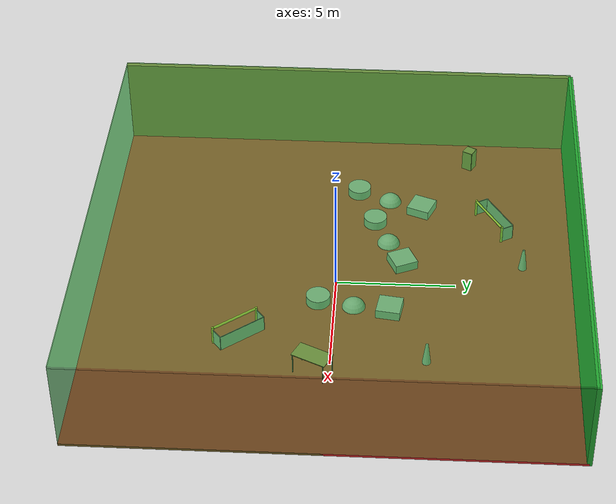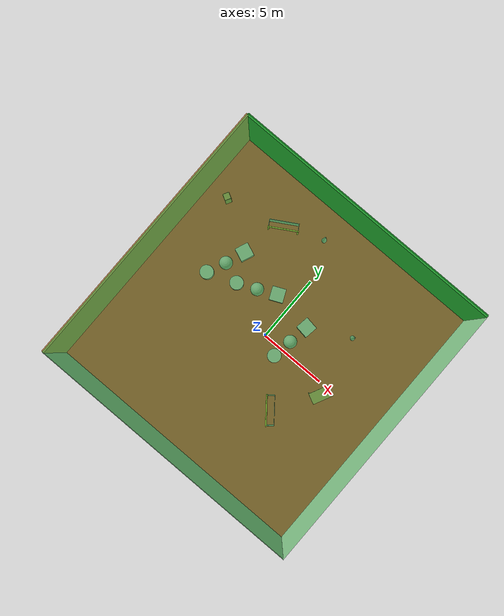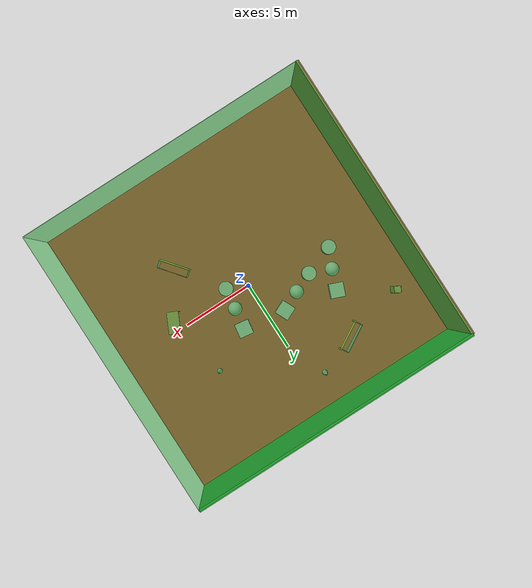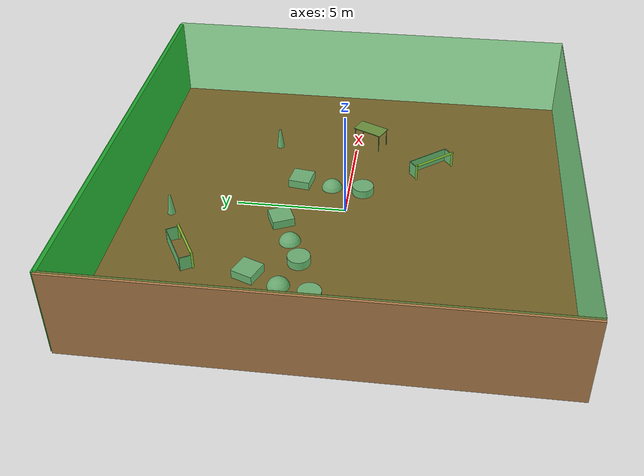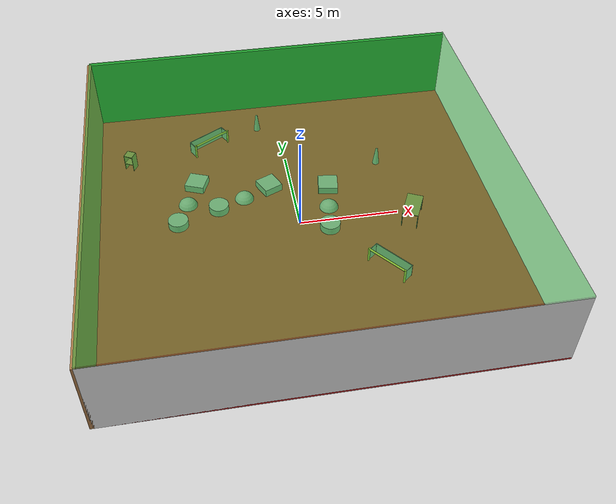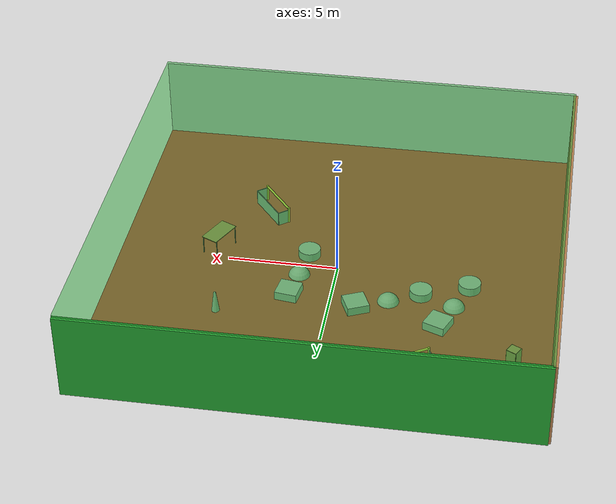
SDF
<sdf version="1.4">
 <world name="default">
  <physics type="ode">
   <max_step_size>0.001</max_step_size>
   <real_time_factor>1</real_time_factor>
   <real_time_update_rate>1000</real_time_update_rate>
   <gravity>0 0 -9.8</gravity>
  </physics>
  <scene><ambient>0.4 0.4 0.4 1</ambient><background>0.7 0.7 0.7 1</background><shadows>1</shadows></scene>
  <model name="Surrounding">
   <static>1</static>
   <link name="Ceiling">
    <collision name="Ceiling_Collision"><geometry><box><size>20 20 0.1</size></box></geometry></collision>
    <visual name="Ceiling_Visual">
     <geometry><box><size>20 20 0.1</size></box></geometry>
     <material>
      <script><uri>file://media/materials/scripts/gazebo.material</uri><name>Gazebo/GreenTransparent</name></script>
     </material>
    </visual>
    <pose>0 0 4.05 0 0 0</pose>
   </link>
   <link name="Wall_South">
    <collision name="Wall_South_Collision">
     <geometry><box><size>20 0 4</size></box></geometry>
     <pose>0 0 2 0 -0 0</pose>
    </collision>
    <visual name="Wall_South_Visual">
     <pose>0 0 2 0 -0 0</pose>
     <geometry><box><size>20 0 4</size></box></geometry>
     <material>
      <script><uri>file://media/materials/scripts/gazebo.material</uri><name>Gazebo/White</name></script>
     </material>
    </visual>
    <velocity_decay><linear>0</linear><angular>0</angular></velocity_decay>
    <pose>0 -10 0 0 -0 0</pose>
   </link>
   <link name="Wall_East">
    <collision name="Wall_21_Collision">
     <geometry><box><size>20 0 4</size></box></geometry>
     <pose>0 0 2 0 -0 0</pose>
    </collision>
    <visual name="Wall_21_Visual">
     <pose>0 0 2 0 -0 0</pose>
     <geometry><box><size>20 0 4</size></box></geometry>
     <material>
      <script><uri>file://media/materials/scripts/gazebo.material</uri><name>Gazebo/GreenTransparent</name></script>
     </material>
    </visual>
    <velocity_decay><linear>0</linear><angular>0</angular></velocity_decay>
    <pose>10 0 0 0 -0 1.5708</pose>
   </link>
   <link name="Wall_North">
    <collision name="Wall_22_Collision">
     <geometry><box><size>20 0.2 4</size></box></geometry>
     <pose>0 0 2 0 -0 0</pose>
    </collision>
    <visual name="Wall_22_Visual">
     <pose>0 0 2 0 -0 0</pose>
     <geometry><box><size>20 0.2 4</size></box></geometry>
     <material>
      <script><uri>file://media/materials/scripts/gazebo.material</uri><name>Gazebo/GreenGlow</name></script>
     </material>
    </visual>
    <velocity_decay><linear>0</linear><angular>0</angular></velocity_decay>
    <pose>0 10 0 0 -0 0</pose>
   </link>
   <link name="Wall_West">
    <collision name="Wall_23_Collision">
     <geometry><box><size>20 0.2 4</size></box></geometry>
     <pose>0 0 2 0 -0 0</pose>
    </collision>
    <visual name="Wall_23_Visual">
     <pose>0 0 2 0 -0 0</pose>
     <geometry><box><size>20 0.2 4</size></box></geometry>
     <material>
      <script><uri>file://media/materials/scripts/gazebo.material</uri><name>Gazebo/WoodPallet</name></script>
     </material>
    </visual>
    <velocity_decay><linear>0</linear><angular>0</angular></velocity_decay>
    <pose>-10 0 0 0 0 -1.5708</pose>
   </link>
   <link name="Ground_link">
    <collision name="collision">
     <pose>0 0 .05 0 -0 0</pose>
     <geometry><box><size>20 20 0.1</size></box></geometry>
    </collision>
    <visual name="visual">
     <pose>0 0 .05 0 -0 0</pose>
     <geometry><box><size>20 20 0.1</size></box></geometry>
     <material>
      <script><uri>file://media/materials/scripts/gazebo.material</uri><name>Gazebo/RedBright</name></script>
     </material>
    </visual>
   </link>
   <static>1</static>
  </model>
  <spherical_coordinates>
   <surface_model>EARTH_WGS84</surface_model>
   <latitude_deg>0</latitude_deg>
   <longitude_deg>0</longitude_deg>
   <elevation>0</elevation>
   <heading_deg>0</heading_deg>
  </spherical_coordinates>
  <light name="lightball_0" type="diffuse">
   <diffuse>0.8 0.8 0.8 1</diffuse>
   <specular>0.2 0.2 0.2 1</specular>
   <attenuation>
    <range>100</range>
    <constant>0.7</constant>
    <linear>0.01</linear>
    <quadratic>0.001</quadratic>
   </attenuation>
   <direction>-0.5 0.1 -0.9</direction>
   <pose>9.92731163155 -2.49468493765 2.41599706494 0 0 0</pose>
  </light>
  <light name="lightball_1" type="diffuse">
   <diffuse>0.8 0.8 0.8 1</diffuse>
   <specular>0.2 0.2 0.2 1</specular>
   <attenuation>
    <range>100</range>
    <constant>0.7</constant>
    <linear>0.01</linear>
    <quadratic>0.001</quadratic>
   </attenuation>
   <direction>-0.5 0.1 -0.9</direction>
   <pose>-6.20614828903 -5.5952090808 1.70092945711 0 0 0</pose>
  </light>
  <light name="lightball_2" type="diffuse">
   <diffuse>0.8 0.8 0.8 1</diffuse>
   <specular>0.2 0.2 0.2 1</specular>
   <attenuation>
    <range>100</range>
    <constant>0.7</constant>
    <linear>0.01</linear>
    <quadratic>0.001</quadratic>
   </attenuation>
   <direction>-0.5 0.1 -0.9</direction>
   <pose>1.87071975056 -1.1878525451 0.842107071169 0 0 0</pose>
  </light>
  <light name="lightball_3" type="diffuse">
   <diffuse>0.8 0.8 0.8 1</diffuse>
   <specular>0.2 0.2 0.2 1</specular>
   <attenuation>
    <range>100</range>
    <constant>0.7</constant>
    <linear>0.01</linear>
    <quadratic>0.001</quadratic>
   </attenuation>
   <direction>-0.5 0.1 -0.9</direction>
   <pose>-3.99024987874 -2.16808516211 3.74578496596 0 0 0</pose>
  </light>
  <light name="lightball_4" type="diffuse">
   <diffuse>0.8 0.8 0.8 1</diffuse>
   <specular>0.2 0.2 0.2 1</specular>
   <attenuation>
    <range>100</range>
    <constant>0.7</constant>
    <linear>0.01</linear>
    <quadratic>0.001</quadratic>
   </attenuation>
   <direction>-0.5 0.1 -0.9</direction>
   <pose>2.7401244284 -3.62508059249 1.26062682652 0 0 0</pose>
  </light>
  <light name="lightball_5" type="diffuse">
   <diffuse>0.8 0.8 0.8 1</diffuse>
   <specular>0.2 0.2 0.2 1</specular>
   <attenuation>
    <range>100</range>
    <constant>0.7</constant>
    <linear>0.01</linear>
    <quadratic>0.001</quadratic>
   </attenuation>
   <direction>-0.5 0.1 -0.9</direction>
   <pose>3.68933492705 -3.03804346154 3.60358611797 0 0 0</pose>
  </light>
  <light name="lightball_6" type="diffuse">
   <diffuse>0.8 0.8 0.8 1</diffuse>
   <specular>0.2 0.2 0.2 1</specular>
   <attenuation>
    <range>100</range>
    <constant>0.7</constant>
    <linear>0.01</linear>
    <quadratic>0.001</quadratic>
   </attenuation>
   <direction>-0.5 0.1 -0.9</direction>
   <pose>8.40308765418 9.34074414617 2.1988789342 0 0 0</pose>
  </light>
  <light name="lightball_7" type="diffuse">
   <diffuse>0.8 0.8 0.8 1</diffuse>
   <specular>0.2 0.2 0.2 1</specular>
   <attenuation>
    <range>100</range>
    <constant>0.7</constant>
    <linear>0.01</linear>
    <quadratic>0.001</quadratic>
   </attenuation>
   <direction>-0.5 0.1 -0.9</direction>
   <pose>2.52006262532 9.34633412756 2.30092478247 0 0 0</pose>
  </light>
  <light name="lightball_8" type="diffuse">
   <diffuse>0.8 0.8 0.8 1</diffuse>
   <specular>0.2 0.2 0.2 1</specular>
   <attenuation>
    <range>100</range>
    <constant>0.7</constant>
    <linear>0.01</linear>
    <quadratic>0.001</quadratic>
   </attenuation>
   <direction>-0.5 0.1 -0.9</direction>
   <pose>-4.99479733945 -0.553553961341 2.48838900931 0 0 0</pose>
  </light>
  <light name="lightball_9" type="diffuse">
   <diffuse>0.8 0.8 0.8 1</diffuse>
   <specular>0.2 0.2 0.2 1</specular>
   <attenuation>
    <range>100</range>
    <constant>0.7</constant>
    <linear>0.01</linear>
    <quadratic>0.001</quadratic>
   </attenuation>
   <direction>-0.5 0.1 -0.9</direction>
   <pose>3.15890836844 3.42741636397 2.85426239506 0 0 0</pose>
  </light>
  <include><uri>model://cabinet</uri><pose>-8.28988491629 5.61588322302 0 0 0 1.08116901694</pose></include>
  <include>
   <uri>model://textured_shapes</uri>
   <pose>-5.47389765123 2.12404297906 0 0 0 2.76101006922</pose>
  </include>
  <include>
   <uri>model://robocup_3Dsim_goal</uri>
   <pose>-3.85645907572 6.44111599889 0 0 0 2.10442933448</pose>
  </include>
  <include>
   <uri>model://textured_shapes</uri>
   <pose>-2.57518333954 2.13200558907 0 0 0 1.99710340176</pose>
  </include>
  <include>
   <uri>model://construction_cone</uri>
   <pose>-1.20066395614 7.83995165567 0 0 0 3.10530525715</pose>
  </include>
  <include>
   <uri>model://textured_shapes</uri>
   <pose>1.61401338888 0.813978169227 0 0 0 2.9930318489</pose>
  </include>
  <include>
   <uri>model://robocup_3Dsim_goal</uri>
   <pose>3.4272444847 -3.9187895502 0 0 0 0.674080468428</pose>
  </include>
  <include><uri>model://table</uri><pose>5.56298059984 -0.639961097171 0 0 0 1.12142049996</pose></include>
  <include>
   <uri>model://construction_cone</uri>
   <pose>4.80370991069 3.85175146208 0 0 0 1.46497817325</pose>
  </include>
 </world>
</sdf>

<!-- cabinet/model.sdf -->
<sdf version="1.5">
  <model name="cabinet">
    <static>true</static>
    <link name="cabinet_bottom_plate">
      <inertial>
        <pose>0 0 -1 0 0 0</pose>
        <inertia>
          <ixx>2.050000</ixx>
          <ixy>0</ixy>
          <ixz>0</ixz>
          <iyy>2.050000</iyy>
          <iyz>0</iyz>
          <izz>2.050000</izz>
        </inertia>
        <mass>25.000000</mass>
      </inertial>
      <collision name="cabinet_bottom_plate_geom">
        <pose>0 0 0.010000 0 0 0</pose>
        <geometry>
          <box>
            <size>0.450000 0.450000 0.020000</size>
          </box>
        </geometry>
      </collision>
      <visual name="cabinet_bottom_plate_geom_visual">
        <pose>0 0 0.010000 0 0 0</pose>
        <geometry>
          <box>
            <size>0.450000 0.450000 0.020000</size>
          </box>
        </geometry>
        <material>
          <script>
            <uri>model://media/materials/scripts/gazebo.material</uri>
            <name>Gazebo/Wood</name>
          </script>
        </material>
      </visual>
      <collision name="cabinet_bottom_plate_geom_cabinet_back_plate">
        <pose>0.235000 0 0.510000 0 0 0</pose>
        <geometry>
          <box>
            <size>0.020000 0.450000 1.020000</size>
          </box>
        </geometry>
      </collision>
      <visual name="cabinet_bottom_plate_geom_cabinet_back_plate_visual">
        <pose>0.235000 0 0.510000 0 0 0</pose>
        <geometry>
          <box>
            <size>0.020000 0.450000 1.020000</size>
          </box>
        </geometry>
        <material>
          <script>
            <uri>model://media/materials/scripts/gazebo.material</uri>
            <name>Gazebo/Wood</name>
          </script>
        </material>
      </visual>
      <collision name="cabinet_bottom_plate_geom_cabinet_left_plate">
        <pose>0 0.235000 0.510000 0 0 0</pose>
        <geometry>
          <box>
            <size>0.450000 0.020000 1.020000</size>
          </box>
        </geometry>
      </collision>
      <visual name="cabinet_bottom_plate_geom_cabinet_left_plate_visual">
        <pose>0 0.235000 0.510000 0 0 0</pose>
        <geometry>
          <box>
            <size>0.450000 0.020000 1.020000</size>
          </box>
        </geometry>
        <material>
          <script>
            <uri>model://media/materials/scripts/gazebo.material</uri>
            <name>Gazebo/Wood</name>
          </script>
        </material>
      </visual>
      <collision name="cabinet_bottom_plate_geom_cabinet_middle_plate">
        <pose>0 0 0.510000 0 0 0</pose>
        <geometry>
          <box>
            <size>0.450000 0.450000 0.020000</size>
          </box>
        </geometry>
      </collision>
      <visual name="cabinet_bottom_plate_geom_cabinet_middle_plate_visual">
        <pose>0 0 0.510000 0 0 0</pose>
        <geometry>
          <box>
            <size>0.450000 0.450000 0.020000</size>
          </box>
        </geometry>
        <material>
          <script>
            <uri>model://media/materials/scripts/gazebo.material</uri>
            <name>Gazebo/Wood</name>
          </script>
        </material>
      </visual>
      <collision name="cabinet_bottom_plate_geom_cabinet_right_plate">
        <pose>0 -0.235000 0.510000 0 0 0</pose>
        <geometry>
          <box>
            <size>0.450000 0.020000 1.020000</size>
          </box>
        </geometry>
      </collision>
      <visual name="cabinet_bottom_plate_geom_cabinet_right_plate_visual">
        <pose>0 -0.235000 0.510000 0 0 0</pose>
        <geometry>
          <box>
            <size>0.450000 0.020000 1.020000</size>
          </box>
        </geometry>
        <material>
          <script>
            <uri>model://media/materials/scripts/gazebo.material</uri>
            <name>Gazebo/Wood</name>
          </script>
        </material>
      </visual>
      <collision name="cabinet_bottom_plate_geom_cabinet_top_plate">
        <pose>0 0 1.010000 0 0 0</pose>
        <geometry>
          <box>
            <size>0.450000 0.450000 0.020000</size>
          </box>
        </geometry>
      </collision>
      <visual name="cabinet_bottom_plate_geom_cabinet_top_plate_visual">
        <pose>0 0 1.010000 0 0 0</pose>
        <geometry>
          <box>
            <size>0.450000 0.450000 0.020000</size>
          </box>
        </geometry>
        <material>
          <script>
            <uri>model://media/materials/scripts/gazebo.material</uri>
            <name>Gazebo/Wood</name>
          </script>
        </material>
      </visual>
    </link>
  </model>
</sdf>

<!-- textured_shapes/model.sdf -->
<sdf version="1.6">
  <model name="textured_shapes">
    <pose>0 0 0.5 0 0 0</pose>
    <link name="box">
      <pose>0 -1.5 0 0 0 0</pose>
      <collision name="collision">
        <geometry>
          <box>
            <size>1 1 1</size>
          </box>
        </geometry>
      </collision>
      <visual name="visual">
        <geometry>
          <box>
            <size>1 1 1</size>
          </box>
        </geometry>
        <material>
          <script>
            <uri>model://../model_source/models/textured_shapes/materials/scripts</uri>
            <uri>model://../model_source/models/textured_shapes/materials/textures</uri>
            <name>TexturedShape/Squares</name>
          </script>
        </material>
      </visual>
    </link>
    <link name="sphere">
      <collision name="collision">
        <geometry>
          <sphere>
            <radius>0.5</radius>
          </sphere>
        </geometry>
      </collision>
      <visual name="visual">
        <geometry>
          <sphere>
            <radius>0.5</radius>
          </sphere>
        </geometry>
        <material>
          <script>
            <uri>model://../model_source/models/textured_shapes/materials/scripts</uri>
            <uri>model://../model_source/models/textured_shapes/materials/textures</uri>
            <name>TexturedShape/Squares</name>
          </script>
        </material>
      </visual>
    </link>
    <link name="cylinder">
      <pose>0 1.5 0 0 0 0</pose>
      <collision name="collision">
        <geometry>
          <cylinder>
            <radius>0.5</radius>
            <length>1</length>
          </cylinder>
        </geometry>
      </collision>
      <visual name="visual">
        <geometry>
          <cylinder>
            <radius>0.5</radius>
            <length>1</length>
          </cylinder>
        </geometry>
        <material>
          <script>
            <uri>model://../model_source/models/textured_shapes/materials/scripts</uri>
            <uri>model://../model_source/models/textured_shapes/materials/textures</uri>
            <name>TexturedShape/Squares</name>
          </script>
        </material>
      </visual>
    </link>
  </model>
</sdf>

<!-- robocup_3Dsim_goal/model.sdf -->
<sdf version="1.5">
  <model name="robocup_3d_goal">
    <static>true</static>
    <link name="left_post">
      <pose>0 1.05 0.45 0 0 0</pose>
      <collision name="collision">
        <geometry>
          <cylinder>
            <radius>0.05</radius>
            <length>0.9</length>
          </cylinder>
        </geometry>
      </collision>
      <visual name="visual">
        <geometry>
          <cylinder>
            <radius>0.05</radius>
            <length>0.9</length>
          </cylinder>
        </geometry>
        <material>
          <script>
            <uri>file://media/materials/scripts/gazebo.material</uri>
            <name>Gazebo/ZincYellow</name>
          </script>
        </material>
      </visual>
    </link>
    <link name="left_support_horiz_lower">
      <pose>0.30 1.05 0.01 0 0 0</pose>
      <collision name="collision">
        <geometry>
          <box>
            <size>0.50 0.02 0.02</size>
          </box>
        </geometry>
      </collision>
      <visual name="visual">
        <geometry>
          <box>
            <size>0.50 0.02 0.02</size>
          </box>
        </geometry>
        <material>
          <script>
            <uri>file://media/materials/scripts/gazebo.material</uri>
            <name>Gazebo/White</name>
          </script>
        </material>
      </visual>
    </link>
    <link name="left_support_horiz_upper">
      <pose>0.30 1.05 0.79 0 0 0</pose>
      <collision name="collision">
        <geometry>
          <box>
            <size>0.50 0.02 0.02</size>
          </box>
        </geometry>
      </collision>
      <visual name="visual">
        <geometry>
          <box>
            <size>0.50 0.02 0.02</size>
          </box>
        </geometry>
        <material>
          <script>
            <uri>file://media/materials/scripts/gazebo.material</uri>
            <name>Gazebo/White</name>
          </script>
        </material>
      </visual>
    </link>
    <link name="left_support_vertical">
      <pose>0.56 1.05 0.4 0 1.5708 0</pose>
      <collision name="collision">
        <geometry>
          <box>
            <size>0.80 0.02 0.02</size>
          </box>
        </geometry>
      </collision>
      <visual name="visual">
        <geometry>
          <box>
            <size>0.80 0.02 0.02</size>
          </box>
        </geometry>
        <material>
          <script>
            <uri>file://media/materials/scripts/gazebo.material</uri>
            <name>Gazebo/White</name>
          </script>
        </material>
      </visual>
    </link>
    <link name="right_support_horiz_lower">
      <pose>0.30 -1.05 0.01 0 0 0</pose>
      <collision name="collision">
        <geometry>
          <box>
            <size>0.50 0.02 0.02</size>
          </box>
        </geometry>
      </collision>
      <visual name="visual">
        <geometry>
          <box>
            <size>0.50 0.02 0.02</size>
          </box>
        </geometry>
        <material>
          <script>
            <uri>file://media/materials/scripts/gazebo.material</uri>
            <name>Gazebo/White</name>
          </script>
        </material>
      </visual>
    </link>
    <link name="right_support_horiz_upper">
      <pose>0.30 -1.05 0.79 0 0 0</pose>
      <collision name="collision">
        <geometry>
          <box>
            <size>0.50 0.02 0.02</size>
          </box>
        </geometry>
      </collision>
      <visual name="visual">
        <geometry>
          <box>
            <size>0.50 0.02 0.02</size>
          </box>
        </geometry>
        <material>
          <script>
            <uri>file://media/materials/scripts/gazebo.material</uri>
            <name>Gazebo/White</name>
          </script>
        </material>
      </visual>
    </link>
    <link name="right_support_vertical">
      <pose>0.56 -1.05 0.4 0 1.5708 0</pose>
      <collision name="collision">
        <geometry>
          <box>
            <size>0.80 0.02 0.02</size>
          </box>
        </geometry>
      </collision>
      <visual name="visual">
        <geometry>
          <box>
            <size>0.80 0.02 0.02</size>
          </box>
        </geometry>
        <material>
          <script>
            <uri>file://media/materials/scripts/gazebo.material</uri>
            <name>Gazebo/White</name>
          </script>
        </material>
      </visual>
    </link>
    <link name="center_support_horiz_lower">
      <pose>0.56 0 0.01 0 1.5708 0</pose>
      <collision name="collision">
        <geometry>
          <box>
            <size>0.02 2.08 0.02</size>
          </box>
        </geometry>
      </collision>
      <visual name="visual">
        <geometry>
          <box>
            <size>0.02 2.08 0.02</size>
          </box>
        </geometry>
        <material>
          <script>
            <uri>file://media/materials/scripts/gazebo.material</uri>
            <name>Gazebo/White</name>
          </script>
        </material>
      </visual>
    </link>
    <link name="center_support_horiz_upper">
      <pose>0.56 0 0.79 0 1.5708 0</pose>
      <collision name="collision">
        <geometry>
          <box>
            <size>0.02 2.08 0.02</size>
          </box>
        </geometry>
      </collision>
      <visual name="visual">
        <geometry>
          <box>
            <size>0.02 2.08 0.02</size>
          </box>
        </geometry>
        <material>
          <script>
            <uri>file://media/materials/scripts/gazebo.material</uri>
            <name>Gazebo/White</name>
          </script>
        </material>
      </visual>
    </link>
    <link name="right_post">
      <pose>0 -1.05 0.45 0 0 0</pose>
      <collision name="collision">
        <geometry>
          <cylinder>
            <radius>0.05</radius>
            <length>0.9</length>
          </cylinder>
        </geometry>
      </collision>
      <visual name="visual">
        <geometry>
          <cylinder>
            <radius>0.05</radius>
            <length>0.9</length>
          </cylinder>
        </geometry>
        <material>
          <script>
            <uri>file://media/materials/scripts/gazebo.material</uri>
            <name>Gazebo/ZincYellow</name>
          </script>
        </material>
      </visual>
    </link>
    <link name="crossbar">
      <pose>0 0 0.85 1.57 1.57 0</pose>
      <collision name="collision">
        <geometry>
          <cylinder>
            <radius>0.05</radius>
            <length>2.0</length>
          </cylinder>
        </geometry>
      </collision>
      <visual name="visual">
        <geometry>
          <cylinder>
            <radius>0.05</radius>
            <length>2.0</length>
          </cylinder>
        </geometry>
        <material>
          <script>
            <uri>file://media/materials/scripts/gazebo.material</uri>
            <name>Gazebo/ZincYellow</name>
          </script>
        </material>
      </visual>
    </link>
    <link name="center_net">
      <pose>0.56 0 0.40 0 0 0</pose>
      <collision name="collision">
        <geometry>
          <box>
            <size>0.01 2.1 0.80</size>
          </box>
        </geometry>
      </collision>
      <visual name="visual">
        <geometry>
          <box>
            <size>0.01 2.1 0.80</size>
          </box>
        </geometry>
        <material>
          <script>
            <uri>model://../model_source/models/robocup09_spl_field/materials/scripts/</uri>
            <uri>model://../model_source/models/robocup09_spl_field/materials/textures/</uri>
            <name>RoboCup/Net</name>
          </script>
        </material>
      </visual>
    </link>
    <link name="left_net">
      <pose>0.30 1.05 0.40 0 0 0</pose>
      <collision name="collision">
        <geometry>
          <box>
            <size>0.50 0.01 0.76</size>
          </box>
        </geometry>
      </collision>
      <visual name="visual">
        <geometry>
          <box>
            <size>0.50 0.01 0.76</size>
          </box>
        </geometry>
        <material>
          <script>
            <uri>model://../model_source/models/robocup09_spl_field/materials/scripts/</uri>
            <uri>model://../model_source/models/robocup09_spl_field/materials/textures/</uri>
            <name>RoboCup/Net</name>
          </script>
        </material>
      </visual>
    </link>
    <link name="right_net">
      <pose>0.30 -1.05 0.40 0 0 0</pose>
      <collision name="collision">
        <geometry>
          <box>
            <size>0.50 0.01 0.76</size>
          </box>
        </geometry>
      </collision>
      <visual name="visual">
        <geometry>
          <box>
            <size>0.50 0.01 0.76</size>
          </box>
        </geometry>
        <material>
          <script>
            <uri>model://../model_source/models/robocup09_spl_field/materials/scripts/</uri>
            <uri>model://../model_source/models/robocup09_spl_field/materials/textures/</uri>
            <name>RoboCup/Net</name>
          </script>
        </material>
      </visual>
    </link>
  </model>
</sdf>

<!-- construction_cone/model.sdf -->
<sdf version="1.5">
  <model name="Construction Cone">
    <link name="link">
      <collision name="collision">
        <geometry>
          <mesh>
            <scale>10 10 10</scale>
            <uri>file://isr-testbed/construction_cone/meshes/construction_cone.dae</uri>
          </mesh>
        </geometry>
      </collision>
      <visual name="visual">
        <geometry>
          <mesh>
            <scale>10 10 10</scale>
            <uri>file://isr-testbed/construction_cone/meshes/construction_cone.dae</uri>
          </mesh>
        </geometry>
      </visual>
    </link>
  </model>
</sdf>

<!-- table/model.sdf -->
<sdf version="1.5">
  <model name="table">
    <static>true</static>
    <link name="link">
      <collision name="surface">
        <pose>0 0 1.0 0 0 0</pose>
        <geometry>
          <box>
            <size>1.5 0.8 0.03</size>
          </box>
        </geometry>
        <surface>
          <friction>
            <ode>
              <mu>0.6</mu>
              <mu2>0.6</mu2>
            </ode>
          </friction>
        </surface>
      </collision>
      <visual name="visual1">
        <pose>0 0 1.0 0 0 0</pose>
        <geometry>
          <box>
            <size>1.5 0.8 0.03</size>
          </box>
        </geometry>
        <material>
          <script>
            <uri>model://media/materials/scripts/gazebo.material</uri>
            <name>Gazebo/Wood</name>
          </script>
        </material>
      </visual>
      <collision name="front_left_leg">
        <pose>0.68 0.38 0.5 0 0 0</pose>
        <geometry>
          <cylinder>
            <radius>0.02</radius>
            <length>1.0</length>
          </cylinder>
        </geometry>
      </collision>
      <visual name="front_left_leg">
        <pose>0.68 0.38 0.5 0 0 0</pose>
        <geometry>
          <cylinder>
            <radius>0.02</radius>
            <length>1.0</length>
          </cylinder>
        </geometry>
        <material>
          <script>
            <uri>model://media/materials/scripts/gazebo.material</uri>
            <name>Gazebo/Grey</name>
          </script>
        </material>
      </visual>
      <collision name="front_right_leg">
        <pose>0.68 -0.38 0.5 0 0 0</pose>
        <geometry>
          <cylinder>
            <radius>0.02</radius>
            <length>1.0</length>
          </cylinder>
        </geometry>
      </collision>
      <visual name="front_right_leg">
        <pose>0.68 -0.38 0.5 0 0 0</pose>
        <geometry>
          <cylinder>
            <radius>0.02</radius>
            <length>1.0</length>
          </cylinder>
        </geometry>
        <material>
          <script>
            <uri>model://media/materials/scripts/gazebo.material</uri>
            <name>Gazebo/Grey</name>
          </script>
        </material>
      </visual>
      <collision name="back_right_leg">
        <pose>-0.68 -0.38 0.5 0 0 0</pose>
        <geometry>
          <cylinder>
            <radius>0.02</radius>
            <length>1.0</length>
          </cylinder>
        </geometry>
      </collision>
      <visual name="back_right_leg">
        <pose>-0.68 -0.38 0.5 0 0 0</pose>
        <geometry>
          <cylinder>
            <radius>0.02</radius>
            <length>1.0</length>
          </cylinder>
        </geometry>
        <material>
          <script>
            <uri>model://media/materials/scripts/gazebo.material</uri>
            <name>Gazebo/Grey</name>
          </script>
        </material>
      </visual>
      <collision name="back_left_leg">
        <pose>-0.68 0.38 0.5 0 0 0</pose>
        <geometry>
          <cylinder>
            <radius>0.02</radius>
            <length>1.0</length>
          </cylinder>
        </geometry>
      </collision>
      <visual name="back_left_leg">
        <pose>-0.68 0.38 0.5 0 0 0</pose>
        <geometry>
          <cylinder>
            <radius>0.02</radius>
            <length>1.0</length>
          </cylinder>
        </geometry>
        <material>
          <script>
            <uri>model://media/materials/scripts/gazebo.material</uri>
            <name>Gazebo/Grey</name>
          </script>
        </material>
      </visual>
    </link>
  </model>
</sdf>
